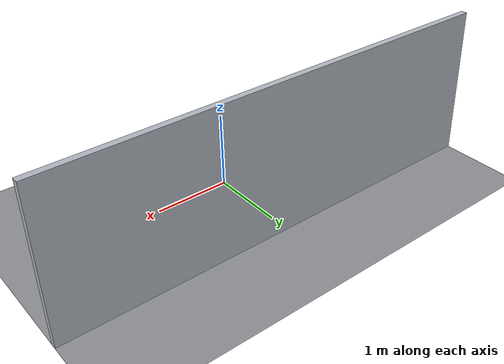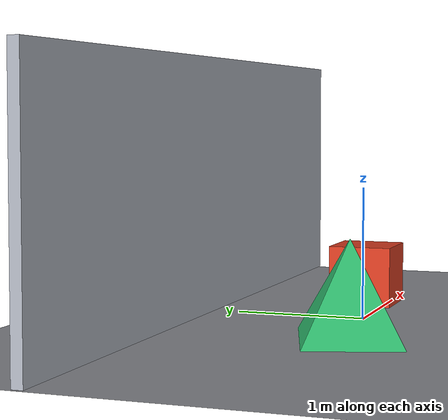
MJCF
<mujoco model="nelif_mesh_test">
  <compiler angle="degree"/>

  <option timestep="0.01" gravity="0 0 -9.81"/>

  <visual>
    <global offwidth="512" offheight="512"/>
    <quality shadowsize="2048" offsamples="0"/>
    <headlight ambient="0 0 0" diffuse="0 0 0" specular="0 0 0"/>
    <map znear="0.01" zfar="20"/>
  </visual>

  <asset>
    <mesh name="pyramid_mesh"
          vertex="-0.45 -0.35 0.00
                   0.45 -0.35 0.00
                   0.45  0.35 0.00
                  -0.45  0.35 0.00
                   0.00  0.00 0.70"
          face="0 1 4
                1 2 4
                2 3 4
                3 0 4
                0 2 1
                0 3 2"/>
    <material name="mat_floor" rgba="0.55 0.56 0.58 1" specular="0.15" shininess="0.35"/>
    <material name="mat_wall" rgba="0.70 0.72 0.76 1" specular="0.08" shininess="0.2"/>
    <material name="mat_mesh" rgba="0.18 0.72 0.42 1" specular="0.35" shininess="0.55"/>
    <material name="mat_box" rgba="0.88 0.25 0.14 1" specular="0.25" shininess="0.45"/>
  </asset>

  <worldbody>
    <camera name="nelif_fixed_cam"
            mode="fixed"
            pos="2.4 -3.2 1.7"
            xyaxes="0.800 0.600 0.000 -0.263 0.351 0.899"
            fovy="45"/>

    <light name="nelif_key_light"
           mode="fixed"
           type="spot"
           castshadow="true"
           pos="-1.4 -1.8 2.8"
           dir="0.35 0.45 -1"
           diffuse="1.0 0.94 0.86"
           specular="0.45 0.45 0.45"
           bulbradius="0.12"
           cutoff="55"/>

    <geom name="floor"
          type="plane"
          pos="0 0 0"
          size="3 3 0.02"
          material="mat_floor"/>

    <geom name="back_wall"
          type="box"
          pos="0 1.25 1.0"
          size="3.0 0.04 1.0"
          material="mat_wall"/>

    <body name="pyramid_body" pos="-0.85 -0.12 0.0" euler="0 0 18">
      <geom name="green_pyramid"
            type="mesh"
            mesh="pyramid_mesh"
            material="mat_mesh"/>
    </body>

    <body name="box_body" pos="0.82 0.18 0.24">
      <geom name="red_box"
            type="box"
            size="0.25 0.25 0.24"
            material="mat_box"/>
    </body>
  </worldbody>
</mujoco>
